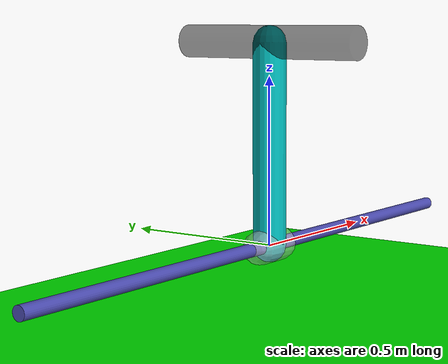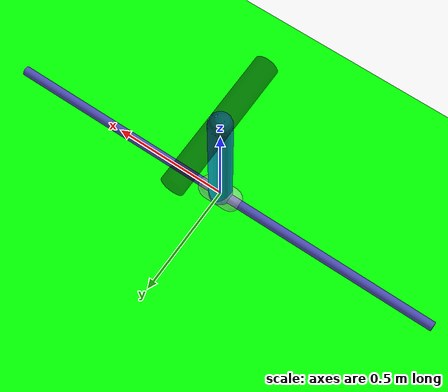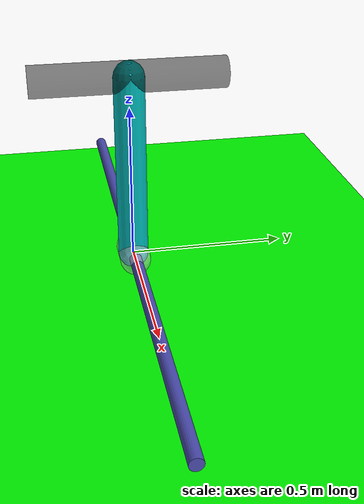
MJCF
<mujoco model="inverted pendulum">
	<compiler inertiafromgeom="true" />
	<default>
		<joint armature="0" damping="0" limited="true" />
		<geom contype="0" friction="0 0 0" rgba="0.8 0.8 0.8  0.5" />
		<tendon />
		<motor ctrlrange="-3 3" />
	</default>

	<visual>

		<headlight diffuse="0.3 0.3 0.3" ambient="0.2 0.2 0.2" specular="0 0 0" />

	</visual>
	<option gravity="0 0 -9.81" integrator="RK4" timestep="0.02" />
	<size nstack="3000" />

	<worldbody>
		<!-- light name="to2" pos="-1 -1 0" specular="1 1 1" diffuse="9 9 9" dir="1 1 0"/ -->
		<geom name="ground" type="plane" pos="0 0 -0.3" size="3 3 0.1" rgba="0 1 0 1" />
		<geom name="rail" pos="0 0 0" quat="0.707 0 0.707 0" rgba="0.3 0.3 0.7 1" size="0.02 1"
			type="cylinder" />
		<body name="cart" pos="0 0 0">
			<joint axis="1 0 0" limited="true" name="slider" pos="0 0 0" range="-1 1" type="slide" />
			<geom name="cart" pos="0 0 0" quat="0.707 0 0.707 0" size="0.05 0.05" type="capsule" />
			<body name="pole" pos="0 0 0">
				<joint axis="0 1 0" limited="true" name="hinge" pos="0 0 0.01" range="-90 90"
					type="hinge" />
				<geom fromto="0 0 0 0.001 0 0.6" name="cpole" rgba="0 0.7 0.7 1" size="0.049 0.3"
					type="capsule" />
				<geom fromto="0.001 0.3 0.6     0 -0.3 0.6" name="whack" rgba="0 0 0 0.5" size="0.049 0.3"
					type="cylinder" />
			</body>
		</body>
	</worldbody>
	<actuator>
		<motor ctrllimited="true" ctrlrange="-3 3" gear="100" joint="slider" name="slide" />
	</actuator>
</mujoco>
